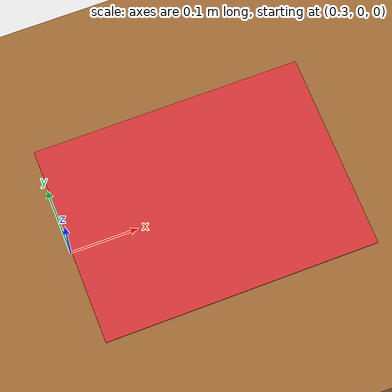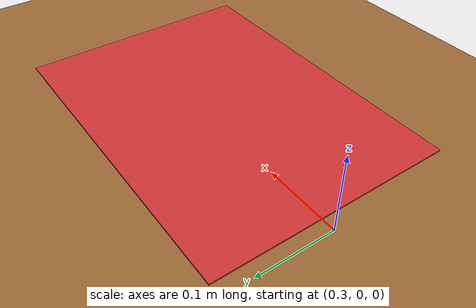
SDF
<?xml version="1.0" ?>
<sdf version="1.6">
  <world name="cutting_cell">
    <!-- Physics -->
    <physics name="default" type="ode">
      <gravity>0 0 -9.8</gravity>
    </physics>

    <!-- Ambient lighting -->
    <scene>
      <ambient>0.4 0.4 0.4 1</ambient>
      <background>0.7 0.7 0.7 1</background>
    </scene>

    <!-- Directional sun (to light the scene) -->
    <light name="sun" type="directional">
      <pose>0 0 10 0 0 0</pose>
      <direction>0 0 -1</direction>
      <diffuse>0.8 0.8 0.8 1</diffuse>
    </light>

    <!-- Ground plane (infinite floor) -->
    <model name="ground_plane">
      <static>true</static>
      <link name="link">
        <collision name="collision">
          <geometry>
            <plane>
              <normal>0 0 1</normal>
              <size>10 10</size>
            </plane>
          </geometry>
        </collision>
        <visual name="visual">
          <geometry>
            <plane>
              <normal>0 0 1</normal>
              <size>10 10</size>
            </plane>
          </geometry>
          <material>
            <ambient>0.5 0.5 0.5 1</ambient>
          </material>
        </visual>
      </link>
    </model>

    <!-- Table where the fabric lies -->
    <model name="table">
      <static>true</static>
      <pose>0.5 0 0 0 0 0</pose>
      <link name="table_link">
        <visual name="visual">
          <geometry>
            <box>
              <size>1.2 1.0 0.05</size>
            </box>
          </geometry>
          <material>
            <ambient>0.6 0.4 0.2 1</ambient>
          </material>
        </visual>
        <collision name="collision">
          <geometry>
            <box>
              <size>1.2 1.0 0.05</size>
            </box>
          </geometry>
        </collision>
      </link>
    </model>

    <!-- Red fabric piece (rigid box for simulation) -->
    <model name="fabric_piece">
      <static>true</static>
      <pose>0.5 0 0.03 0 0 0</pose>
      <link name="fabric_link">
        <visual name="visual">
          <geometry>
            <box>
              <size>0.4 0.3 0.002</size>
            </box>
          </geometry>
          <material>
            <ambient>0.8 0.2 0.2 1</ambient>
          </material>
        </visual>
        <collision name="collision">
          <geometry>
            <box>
              <size>0.4 0.3 0.002</size>
            </box>
          </geometry>
        </collision>
      </link>
    </model>

    <!-- Camera looking down at the table -->
    <model name="camera">
      <static>true</static>
      <pose>0.8 0.5 0.8 0 0.2 0</pose>
      <link name="camera_link">
        <sensor name="camera_sensor" type="camera">
          <camera>
            <horizontal_fov>1.0</horizontal_fov>
            <image>
              <width>640</width>
              <height>480</height>
              <format>R8G8B8</format>
            </image>
            <clip>
              <near>0.1</near>
              <far>10</far>
            </clip>
          </camera>
          <always_on>1</always_on>
          <update_rate>30</update_rate>
          <visualize>true</visualize>
          <topic>/camera/image_raw</topic>
        </sensor>
      </link>
    </model>
  </world>
</sdf>
